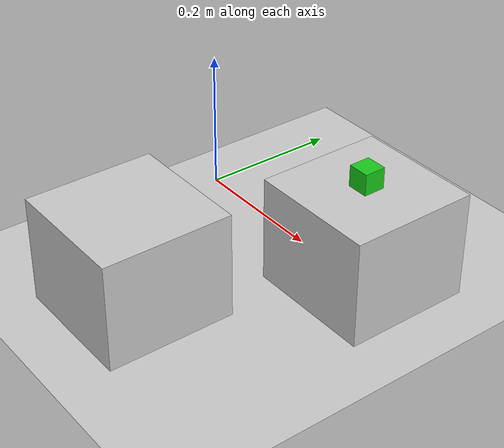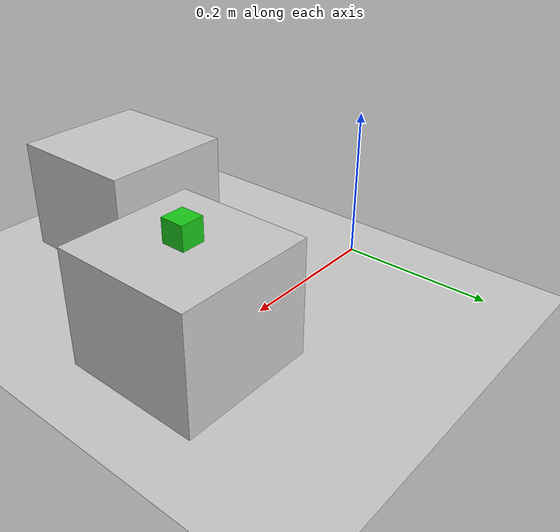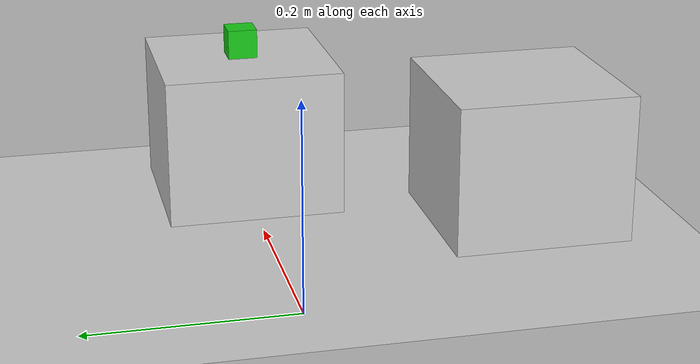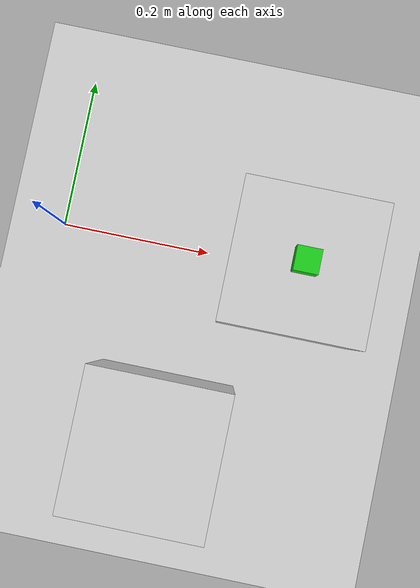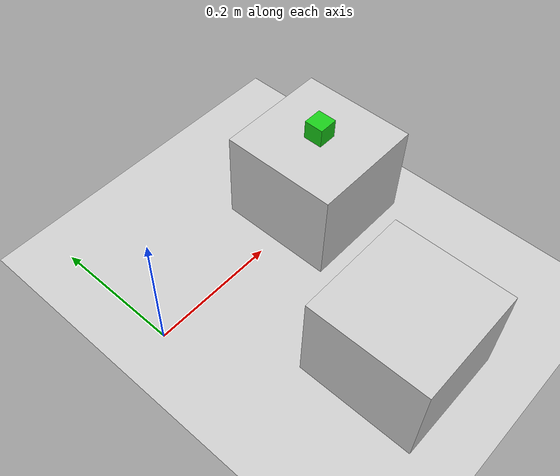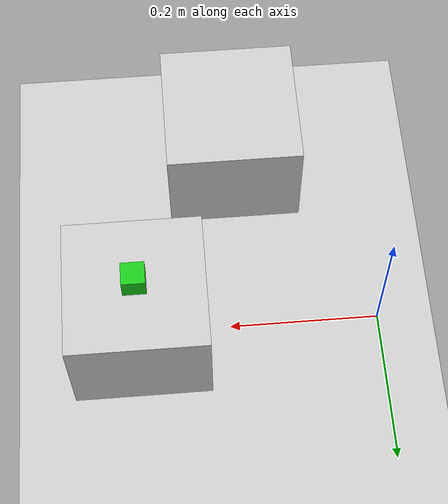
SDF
<?xml version="1.0" ?>
<sdf version="1.6">
  <world name="tb3_pick_place_world">
    <include>
      <uri>model://sun</uri>
    </include>

    <include>
      <uri>model://ground_plane</uri>
    </include>

    <physics type="ode">
      <real_time_update_rate>1000.0</real_time_update_rate>
      <max_step_size>0.001</max_step_size>
      <real_time_factor>1.0</real_time_factor>
    </physics>

    <model name="pickup_stand">
      <static>true</static>
      <pose>0.32 0.00 0.075 0 0 0</pose>
      <link name="link">
        <collision name="collision">
          <geometry>
            <box>
              <size>0.18 0.18 0.15</size>
            </box>
          </geometry>
        </collision>
        <visual name="visual">
          <geometry>
            <box>
              <size>0.18 0.18 0.15</size>
            </box>
          </geometry>
          <material>
            <ambient>0.8 0.8 0.8 1</ambient>
            <diffuse>0.8 0.8 0.8 1</diffuse>
          </material>
        </visual>
      </link>
    </model>

    <model name="place_stand">
      <static>true</static>
      <pose>0.18 -0.26 0.075 0 0 0</pose>
      <link name="link">
        <collision name="collision">
          <geometry>
            <box>
              <size>0.18 0.18 0.15</size>
            </box>
          </geometry>
        </collision>
        <visual name="visual">
          <geometry>
            <box>
              <size>0.18 0.18 0.15</size>
            </box>
          </geometry>
          <material>
            <ambient>0.8 0.8 0.8 1</ambient>
            <diffuse>0.8 0.8 0.8 1</diffuse>
          </material>
        </visual>
      </link>
    </model>

    <model name="pick_cube">
      <static>false</static>
      <pose>0.32 0.00 0.165 0 0 0</pose>
      <link name="link">
        <inertial>
          <mass>0.05</mass>
          <inertia>
            <ixx>0.00002</ixx>
            <iyy>0.00002</iyy>
            <izz>0.00002</izz>
            <ixy>0.0</ixy>
            <ixz>0.0</ixz>
            <iyz>0.0</iyz>
          </inertia>
        </inertial>

        <collision name="collision">
          <geometry>
            <box>
              <size>0.03 0.03 0.03</size>
            </box>
          </geometry>
        </collision>

        <visual name="visual">
          <geometry>
            <box>
              <size>0.03 0.03 0.03</size>
            </box>
          </geometry>
          <material>
            <ambient>0.1 0.8 0.1 1</ambient>
            <diffuse>0.1 0.8 0.1 1</diffuse>
          </material>
        </visual>
      </link>
    </model>
  </world>
</sdf>
